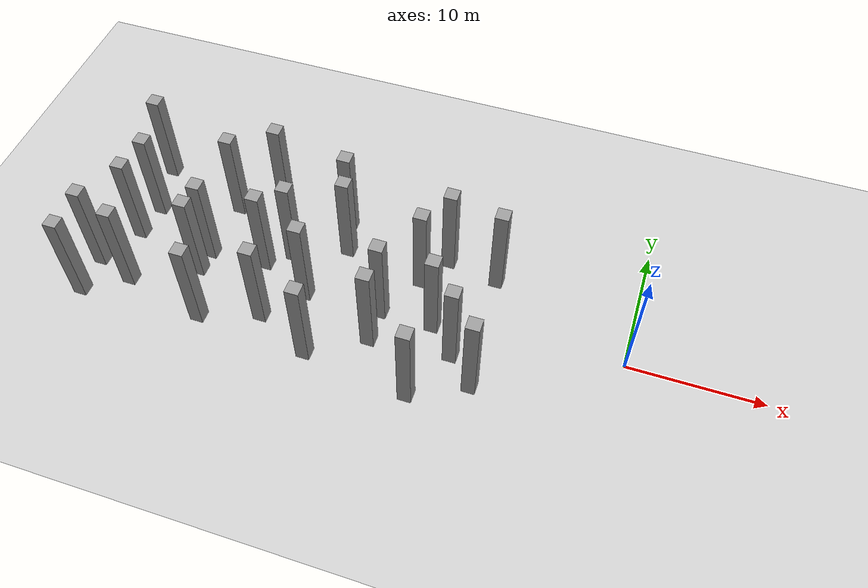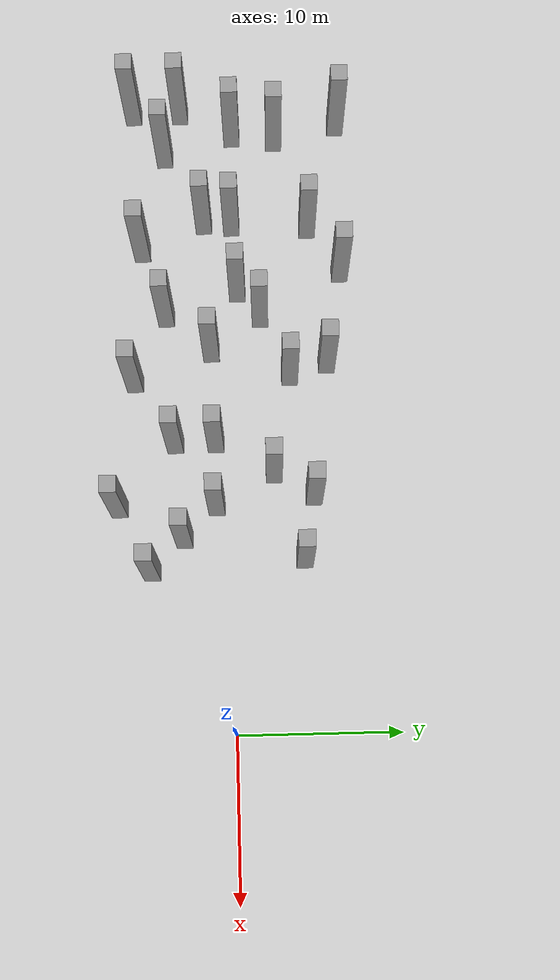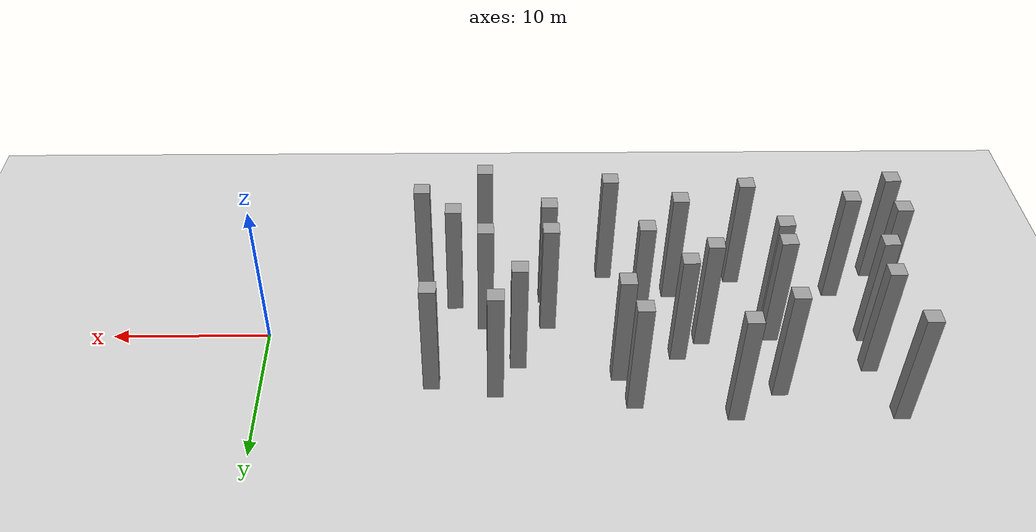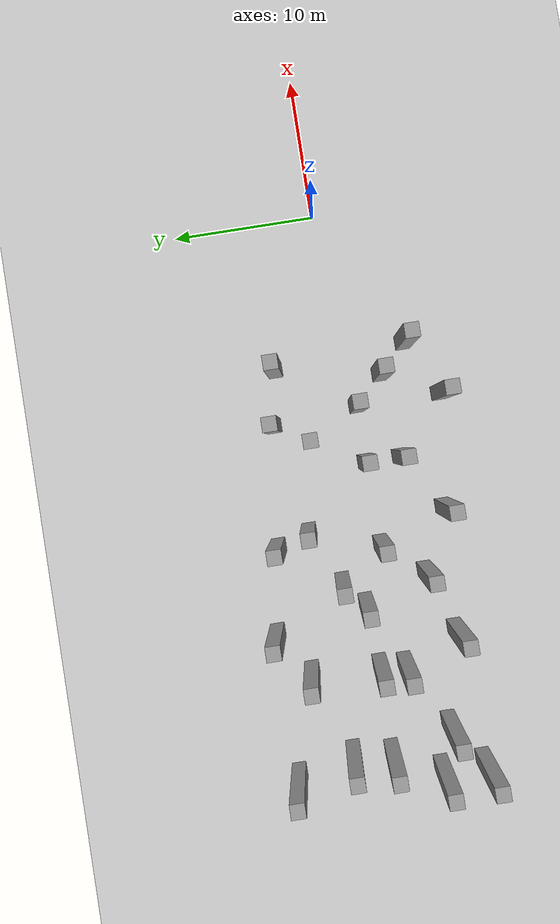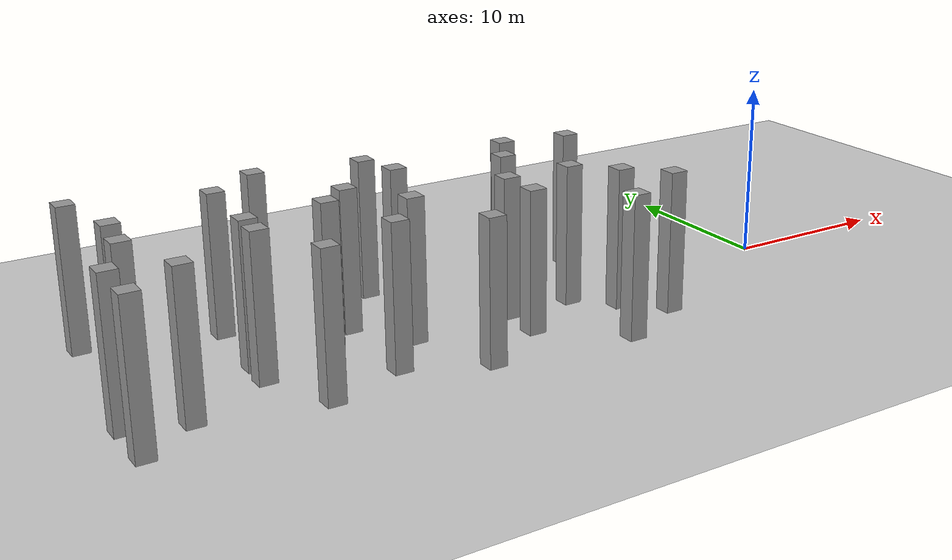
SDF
<sdf version="1.7">
 <world name="default">
  <model name="ground_plane">
   <static>1</static>
   <link name="link">
    <collision name="collision">
     <geometry><plane><normal>0 0 1</normal><size>100 100</size></plane></geometry>
     <surface>
      <contact><collide_bitmask>65535</collide_bitmask></contact>
      <friction><ode><mu>100</mu><mu2>50</mu2></ode></friction>
     </surface>
    </collision>
    <visual name="visual">
     <cast_shadows>0</cast_shadows>
     <geometry><plane><normal>0 0 1</normal><size>100 100</size></plane></geometry>
     <material>
      <script><uri>file://media/materials/scripts/gazebo.material</uri><name>Gazebo/Grey</name></script>
     </material>
    </visual>
   </link>
  </model>
  <model name="unit_box_static42">
   <link name="link">
    <inertial>
     <mass>1</mass>
     <inertia>
      <ixx>0.166667</ixx>
      <ixy>0</ixy>
      <ixz>0</ixz>
      <iyy>0.166667</iyy>
      <iyz>0</iyz>
      <izz>0.166667</izz>
     </inertia>
    </inertial>
    <visual name="visual">
     <geometry><box><size>1 1 8</size></box></geometry>
     <material>
      <script><name>Gazebo/Grey</name><uri>file://media/materials/scripts/gazebo.material</uri></script>
      <shader type="pixel"/>
     </material>
    </visual>
    <collision name="collision">
     <geometry><box><size>1 1 8</size></box></geometry>
     <surface>
      <friction>
       <ode><mu>1</mu><mu2>1</mu2><fdir1>0 0 0</fdir1><slip1>0</slip1><slip2>0</slip2></ode>
       <torsional>
        <coefficient>1</coefficient>
        <patch_radius>0</patch_radius>
        <surface_radius>0</surface_radius>
        <use_patch_radius>1</use_patch_radius>
        <ode><slip>0</slip></ode>
       </torsional>
      </friction>
      <bounce><restitution_coefficient>0</restitution_coefficient><threshold>1e+06</threshold></bounce>
      <contact>
       <collide_without_contact>0</collide_without_contact>
       <collide_without_contact_bitmask>1</collide_without_contact_bitmask>
       <collide_bitmask>1</collide_bitmask>
       <ode>
        <soft_cfm>0</soft_cfm>
        <soft_erp>0.2</soft_erp>
        <kp>1e+13</kp>
        <kd>1</kd>
        <max_vel>0.01</max_vel>
        <min_depth>0</min_depth>
       </ode>
       <bullet>
        <split_impulse>1</split_impulse>
        <split_impulse_penetration_threshold>-0.01</split_impulse_penetration_threshold>
        <soft_cfm>0</soft_cfm>
        <soft_erp>0.2</soft_erp>
        <kp>1e+13</kp>
        <kd>1</kd>
       </bullet>
      </contact>
     </surface>
    </collision>
   </link>
   <static>1</static>
   <pose>-26.1071 1.89959 4 0 -0 0</pose>
  </model>
  <model name="unit_box_static42_clone">
   <link name="link">
    <inertial>
     <mass>1</mass>
     <inertia>
      <ixx>0.166667</ixx>
      <ixy>0</ixy>
      <ixz>0</ixz>
      <iyy>0.166667</iyy>
      <iyz>0</iyz>
      <izz>0.166667</izz>
     </inertia>
    </inertial>
    <visual name="visual">
     <geometry><box><size>1 1 8</size></box></geometry>
     <material>
      <script><name>Gazebo/Grey</name><uri>file://media/materials/scripts/gazebo.material</uri></script>
      <shader type="pixel"/>
     </material>
    </visual>
    <collision name="collision">
     <geometry><box><size>1 1 8</size></box></geometry>
     <surface>
      <friction>
       <ode><mu>1</mu><mu2>1</mu2><fdir1>0 0 0</fdir1><slip1>0</slip1><slip2>0</slip2></ode>
       <torsional>
        <coefficient>1</coefficient>
        <patch_radius>0</patch_radius>
        <surface_radius>0</surface_radius>
        <use_patch_radius>1</use_patch_radius>
        <ode><slip>0</slip></ode>
       </torsional>
      </friction>
      <bounce><restitution_coefficient>0</restitution_coefficient><threshold>1e+06</threshold></bounce>
      <contact>
       <collide_without_contact>0</collide_without_contact>
       <collide_without_contact_bitmask>1</collide_without_contact_bitmask>
       <collide_bitmask>1</collide_bitmask>
       <ode>
        <soft_cfm>0</soft_cfm>
        <soft_erp>0.2</soft_erp>
        <kp>1e+13</kp>
        <kd>1</kd>
        <max_vel>0.01</max_vel>
        <min_depth>0</min_depth>
       </ode>
       <bullet>
        <split_impulse>1</split_impulse>
        <split_impulse_penetration_threshold>-0.01</split_impulse_penetration_threshold>
        <soft_cfm>0</soft_cfm>
        <soft_erp>0.2</soft_erp>
        <kp>1e+13</kp>
        <kd>1</kd>
       </bullet>
      </contact>
     </surface>
    </collision>
   </link>
   <static>1</static>
   <pose>-26.2501 -4.00057 4 0 -0 0</pose>
  </model>
  <model name="unit_box_static42_clone_0">
   <link name="link">
    <inertial>
     <mass>1</mass>
     <inertia>
      <ixx>0.166667</ixx>
      <ixy>0</ixy>
      <ixz>0</ixz>
      <iyy>0.166667</iyy>
      <iyz>0</iyz>
      <izz>0.166667</izz>
     </inertia>
    </inertial>
    <visual name="visual">
     <geometry><box><size>1 1 8</size></box></geometry>
     <material>
      <script><name>Gazebo/Grey</name><uri>file://media/materials/scripts/gazebo.material</uri></script>
      <shader type="pixel"/>
     </material>
    </visual>
    <collision name="collision">
     <geometry><box><size>1 1 8</size></box></geometry>
     <surface>
      <friction>
       <ode><mu>1</mu><mu2>1</mu2><fdir1>0 0 0</fdir1><slip1>0</slip1><slip2>0</slip2></ode>
       <torsional>
        <coefficient>1</coefficient>
        <patch_radius>0</patch_radius>
        <surface_radius>0</surface_radius>
        <use_patch_radius>1</use_patch_radius>
        <ode><slip>0</slip></ode>
       </torsional>
      </friction>
      <bounce><restitution_coefficient>0</restitution_coefficient><threshold>1e+06</threshold></bounce>
      <contact>
       <collide_without_contact>0</collide_without_contact>
       <collide_without_contact_bitmask>1</collide_without_contact_bitmask>
       <collide_bitmask>1</collide_bitmask>
       <ode>
        <soft_cfm>0</soft_cfm>
        <soft_erp>0.2</soft_erp>
        <kp>1e+13</kp>
        <kd>1</kd>
        <max_vel>0.01</max_vel>
        <min_depth>0</min_depth>
       </ode>
       <bullet>
        <split_impulse>1</split_impulse>
        <split_impulse_penetration_threshold>-0.01</split_impulse_penetration_threshold>
        <soft_cfm>0</soft_cfm>
        <soft_erp>0.2</soft_erp>
        <kp>1e+13</kp>
        <kd>1</kd>
       </bullet>
      </contact>
     </surface>
    </collision>
   </link>
   <static>1</static>
   <pose>-18 -3.51417 4 0 -0 0</pose>
  </model>
  <model name="unit_box_static42_clone_1">
   <link name="link">
    <inertial>
     <mass>1</mass>
     <inertia>
      <ixx>0.166667</ixx>
      <ixy>0</ixy>
      <ixz>0</ixz>
      <iyy>0.166667</iyy>
      <iyz>0</iyz>
      <izz>0.166667</izz>
     </inertia>
    </inertial>
    <visual name="visual">
     <geometry><box><size>1 1 8</size></box></geometry>
     <material>
      <script><name>Gazebo/Grey</name><uri>file://media/materials/scripts/gazebo.material</uri></script>
      <shader type="pixel"/>
     </material>
    </visual>
    <collision name="collision">
     <geometry><box><size>1 1 8</size></box></geometry>
     <surface>
      <friction>
       <ode><mu>1</mu><mu2>1</mu2><fdir1>0 0 0</fdir1><slip1>0</slip1><slip2>0</slip2></ode>
       <torsional>
        <coefficient>1</coefficient>
        <patch_radius>0</patch_radius>
        <surface_radius>0</surface_radius>
        <use_patch_radius>1</use_patch_radius>
        <ode><slip>0</slip></ode>
       </torsional>
      </friction>
      <bounce><restitution_coefficient>0</restitution_coefficient><threshold>1e+06</threshold></bounce>
      <contact>
       <collide_without_contact>0</collide_without_contact>
       <collide_without_contact_bitmask>1</collide_without_contact_bitmask>
       <collide_bitmask>1</collide_bitmask>
       <ode>
        <soft_cfm>0</soft_cfm>
        <soft_erp>0.2</soft_erp>
        <kp>1e+13</kp>
        <kd>1</kd>
        <max_vel>0.01</max_vel>
        <min_depth>0</min_depth>
       </ode>
       <bullet>
        <split_impulse>1</split_impulse>
        <split_impulse_penetration_threshold>-0.01</split_impulse_penetration_threshold>
        <soft_cfm>0</soft_cfm>
        <soft_erp>0.2</soft_erp>
        <kp>1e+13</kp>
        <kd>1</kd>
       </bullet>
      </contact>
     </surface>
    </collision>
   </link>
   <static>1</static>
   <pose>-18 -1 4 0 -0 0</pose>
  </model>
  <model name="unit_box_static42_clone_2">
   <link name="link">
    <inertial>
     <mass>1</mass>
     <inertia>
      <ixx>0.166667</ixx>
      <ixy>0</ixy>
      <ixz>0</ixz>
      <iyy>0.166667</iyy>
      <iyz>0</iyz>
      <izz>0.166667</izz>
     </inertia>
    </inertial>
    <visual name="visual">
     <geometry><box><size>1 1 8</size></box></geometry>
     <material>
      <script><name>Gazebo/Grey</name><uri>file://media/materials/scripts/gazebo.material</uri></script>
      <shader type="pixel"/>
     </material>
    </visual>
    <collision name="collision">
     <geometry><box><size>1 1 8</size></box></geometry>
     <surface>
      <friction>
       <ode><mu>1</mu><mu2>1</mu2><fdir1>0 0 0</fdir1><slip1>0</slip1><slip2>0</slip2></ode>
       <torsional>
        <coefficient>1</coefficient>
        <patch_radius>0</patch_radius>
        <surface_radius>0</surface_radius>
        <use_patch_radius>1</use_patch_radius>
        <ode><slip>0</slip></ode>
       </torsional>
      </friction>
      <bounce><restitution_coefficient>0</restitution_coefficient><threshold>1e+06</threshold></bounce>
      <contact>
       <collide_without_contact>0</collide_without_contact>
       <collide_without_contact_bitmask>1</collide_without_contact_bitmask>
       <collide_bitmask>1</collide_bitmask>
       <ode>
        <soft_cfm>0</soft_cfm>
        <soft_erp>0.2</soft_erp>
        <kp>1e+13</kp>
        <kd>1</kd>
        <max_vel>0.01</max_vel>
        <min_depth>0</min_depth>
       </ode>
       <bullet>
        <split_impulse>1</split_impulse>
        <split_impulse_penetration_threshold>-0.01</split_impulse_penetration_threshold>
        <soft_cfm>0</soft_cfm>
        <soft_erp>0.2</soft_erp>
        <kp>1e+13</kp>
        <kd>1</kd>
       </bullet>
      </contact>
     </surface>
    </collision>
   </link>
   <static>1</static>
   <pose>-14 -1 4 0 -0 0</pose>
  </model>
  <model name="unit_box_static42_clone_3">
   <link name="link">
    <inertial>
     <mass>1</mass>
     <inertia>
      <ixx>0.166667</ixx>
      <ixy>0</ixy>
      <ixz>0</ixz>
      <iyy>0.166667</iyy>
      <iyz>0</iyz>
      <izz>0.166667</izz>
     </inertia>
    </inertial>
    <visual name="visual">
     <geometry><box><size>1 1 8</size></box></geometry>
     <material>
      <script><name>Gazebo/Grey</name><uri>file://media/materials/scripts/gazebo.material</uri></script>
      <shader type="pixel"/>
     </material>
    </visual>
    <collision name="collision">
     <geometry><box><size>1 1 8</size></box></geometry>
     <surface>
      <friction>
       <ode><mu>1</mu><mu2>1</mu2><fdir1>0 0 0</fdir1><slip1>0</slip1><slip2>0</slip2></ode>
       <torsional>
        <coefficient>1</coefficient>
        <patch_radius>0</patch_radius>
        <surface_radius>0</surface_radius>
        <use_patch_radius>1</use_patch_radius>
        <ode><slip>0</slip></ode>
       </torsional>
      </friction>
      <bounce><restitution_coefficient>0</restitution_coefficient><threshold>1e+06</threshold></bounce>
      <contact>
       <collide_without_contact>0</collide_without_contact>
       <collide_without_contact_bitmask>1</collide_without_contact_bitmask>
       <collide_bitmask>1</collide_bitmask>
       <ode>
        <soft_cfm>0</soft_cfm>
        <soft_erp>0.2</soft_erp>
        <kp>1e+13</kp>
        <kd>1</kd>
        <max_vel>0.01</max_vel>
        <min_depth>0</min_depth>
       </ode>
       <bullet>
        <split_impulse>1</split_impulse>
        <split_impulse_penetration_threshold>-0.01</split_impulse_penetration_threshold>
        <soft_cfm>0</soft_cfm>
        <soft_erp>0.2</soft_erp>
        <kp>1e+13</kp>
        <kd>1</kd>
       </bullet>
      </contact>
     </surface>
    </collision>
   </link>
   <static>1</static>
   <pose>-12 -3 4 0 -0 0</pose>
  </model>
  <model name="unit_box_static42_clone_4">
   <link name="link">
    <inertial>
     <mass>1</mass>
     <inertia>
      <ixx>0.166667</ixx>
      <ixy>0</ixy>
      <ixz>0</ixz>
      <iyy>0.166667</iyy>
      <iyz>0</iyz>
      <izz>0.166667</izz>
     </inertia>
    </inertial>
    <visual name="visual">
     <geometry><box><size>1 1 8</size></box></geometry>
     <material>
      <script><name>Gazebo/Grey</name><uri>file://media/materials/scripts/gazebo.material</uri></script>
      <shader type="pixel"/>
     </material>
    </visual>
    <collision name="collision">
     <geometry><box><size>1 1 8</size></box></geometry>
     <surface>
      <friction>
       <ode><mu>1</mu><mu2>1</mu2><fdir1>0 0 0</fdir1><slip1>0</slip1><slip2>0</slip2></ode>
       <torsional>
        <coefficient>1</coefficient>
        <patch_radius>0</patch_radius>
        <surface_radius>0</surface_radius>
        <use_patch_radius>1</use_patch_radius>
        <ode><slip>0</slip></ode>
       </torsional>
      </friction>
      <bounce><restitution_coefficient>0</restitution_coefficient><threshold>1e+06</threshold></bounce>
      <contact>
       <collide_without_contact>0</collide_without_contact>
       <collide_without_contact_bitmask>1</collide_without_contact_bitmask>
       <collide_bitmask>1</collide_bitmask>
       <ode>
        <soft_cfm>0</soft_cfm>
        <soft_erp>0.2</soft_erp>
        <kp>1e+13</kp>
        <kd>1</kd>
        <max_vel>0.01</max_vel>
        <min_depth>0</min_depth>
       </ode>
       <bullet>
        <split_impulse>1</split_impulse>
        <split_impulse_penetration_threshold>-0.01</split_impulse_penetration_threshold>
        <soft_cfm>0</soft_cfm>
        <soft_erp>0.2</soft_erp>
        <kp>1e+13</kp>
        <kd>1</kd>
       </bullet>
      </contact>
     </surface>
    </collision>
   </link>
   <static>1</static>
   <pose>-10 -5 4 0 -0 0</pose>
  </model>
  <model name="unit_box_static42_clone_20">
   <link name="link">
    <inertial>
     <mass>1</mass>
     <inertia>
      <ixx>0.166667</ixx>
      <ixy>0</ixy>
      <ixz>0</ixz>
      <iyy>0.166667</iyy>
      <iyz>0</iyz>
      <izz>0.166667</izz>
     </inertia>
    </inertial>
    <visual name="visual">
     <geometry><box><size>1 1 8</size></box></geometry>
     <material>
      <script><name>Gazebo/Grey</name><uri>file://media/materials/scripts/gazebo.material</uri></script>
      <shader type="pixel"/>
     </material>
    </visual>
    <collision name="collision">
     <geometry><box><size>1 1 8</size></box></geometry>
     <surface>
      <friction>
       <ode><mu>1</mu><mu2>1</mu2><fdir1>0 0 0</fdir1><slip1>0</slip1><slip2>0</slip2></ode>
       <torsional>
        <coefficient>1</coefficient>
        <patch_radius>0</patch_radius>
        <surface_radius>0</surface_radius>
        <use_patch_radius>1</use_patch_radius>
        <ode><slip>0</slip></ode>
       </torsional>
      </friction>
      <bounce><restitution_coefficient>0</restitution_coefficient><threshold>1e+06</threshold></bounce>
      <contact>
       <collide_without_contact>0</collide_without_contact>
       <collide_without_contact_bitmask>1</collide_without_contact_bitmask>
       <collide_bitmask>1</collide_bitmask>
       <ode>
        <soft_cfm>0</soft_cfm>
        <soft_erp>0.2</soft_erp>
        <kp>1e+13</kp>
        <kd>1</kd>
        <max_vel>0.01</max_vel>
        <min_depth>0</min_depth>
       </ode>
       <bullet>
        <split_impulse>1</split_impulse>
        <split_impulse_penetration_threshold>-0.01</split_impulse_penetration_threshold>
        <soft_cfm>0</soft_cfm>
        <soft_erp>0.2</soft_erp>
        <kp>1e+13</kp>
        <kd>1</kd>
       </bullet>
      </contact>
     </surface>
    </collision>
   </link>
   <static>1</static>
   <pose>-14.5362 5 4 0 -0 0</pose>
  </model>
  <model name="unit_box_static42_clone_21">
   <link name="link">
    <inertial>
     <mass>1</mass>
     <inertia>
      <ixx>0.166667</ixx>
      <ixy>0</ixy>
      <ixz>0</ixz>
      <iyy>0.166667</iyy>
      <iyz>0</iyz>
      <izz>0.166667</izz>
     </inertia>
    </inertial>
    <visual name="visual">
     <geometry><box><size>1 1 8</size></box></geometry>
     <material>
      <script><name>Gazebo/Grey</name><uri>file://media/materials/scripts/gazebo.material</uri></script>
      <shader type="pixel"/>
     </material>
    </visual>
    <collision name="collision">
     <geometry><box><size>1 1 8</size></box></geometry>
     <surface>
      <friction>
       <ode><mu>1</mu><mu2>1</mu2><fdir1>0 0 0</fdir1><slip1>0</slip1><slip2>0</slip2></ode>
       <torsional>
        <coefficient>1</coefficient>
        <patch_radius>0</patch_radius>
        <surface_radius>0</surface_radius>
        <use_patch_radius>1</use_patch_radius>
        <ode><slip>0</slip></ode>
       </torsional>
      </friction>
      <bounce><restitution_coefficient>0</restitution_coefficient><threshold>1e+06</threshold></bounce>
      <contact>
       <collide_without_contact>0</collide_without_contact>
       <collide_without_contact_bitmask>1</collide_without_contact_bitmask>
       <collide_bitmask>1</collide_bitmask>
       <ode>
        <soft_cfm>0</soft_cfm>
        <soft_erp>0.2</soft_erp>
        <kp>1e+13</kp>
        <kd>1</kd>
        <max_vel>0.01</max_vel>
        <min_depth>0</min_depth>
       </ode>
       <bullet>
        <split_impulse>1</split_impulse>
        <split_impulse_penetration_threshold>-0.01</split_impulse_penetration_threshold>
        <soft_cfm>0</soft_cfm>
        <soft_erp>0.2</soft_erp>
        <kp>1e+13</kp>
        <kd>1</kd>
       </bullet>
      </contact>
     </surface>
    </collision>
   </link>
   <static>1</static>
   <pose>-16 2.56467 4 0 -0 0</pose>
  </model>
  <model name="unit_box_static42_clone_22">
   <link name="link">
    <inertial>
     <mass>1</mass>
     <inertia>
      <ixx>0.166667</ixx>
      <ixy>0</ixy>
      <ixz>0</ixz>
      <iyy>0.166667</iyy>
      <iyz>0</iyz>
      <izz>0.166667</izz>
     </inertia>
    </inertial>
    <visual name="visual">
     <geometry><box><size>1 1 8</size></box></geometry>
     <material>
      <script><name>Gazebo/Grey</name><uri>file://media/materials/scripts/gazebo.material</uri></script>
      <shader type="pixel"/>
     </material>
    </visual>
    <collision name="collision">
     <geometry><box><size>1 1 8</size></box></geometry>
     <surface>
      <friction>
       <ode><mu>1</mu><mu2>1</mu2><fdir1>0 0 0</fdir1><slip1>0</slip1><slip2>0</slip2></ode>
       <torsional>
        <coefficient>1</coefficient>
        <patch_radius>0</patch_radius>
        <surface_radius>0</surface_radius>
        <use_patch_radius>1</use_patch_radius>
        <ode><slip>0</slip></ode>
       </torsional>
      </friction>
      <bounce><restitution_coefficient>0</restitution_coefficient><threshold>1e+06</threshold></bounce>
      <contact>
       <collide_without_contact>0</collide_without_contact>
       <collide_without_contact_bitmask>1</collide_without_contact_bitmask>
       <collide_bitmask>1</collide_bitmask>
       <ode>
        <soft_cfm>0</soft_cfm>
        <soft_erp>0.2</soft_erp>
        <kp>1e+13</kp>
        <kd>1</kd>
        <max_vel>0.01</max_vel>
        <min_depth>0</min_depth>
       </ode>
       <bullet>
        <split_impulse>1</split_impulse>
        <split_impulse_penetration_threshold>-0.01</split_impulse_penetration_threshold>
        <soft_cfm>0</soft_cfm>
        <soft_erp>0.2</soft_erp>
        <kp>1e+13</kp>
        <kd>1</kd>
       </bullet>
      </contact>
     </surface>
    </collision>
   </link>
   <static>1</static>
   <pose>-23 6 4 0 -0 0</pose>
  </model>
  <model name="unit_box_static42_clone_23">
   <link name="link">
    <inertial>
     <mass>1</mass>
     <inertia>
      <ixx>0.166667</ixx>
      <ixy>0</ixy>
      <ixz>0</ixz>
      <iyy>0.166667</iyy>
      <iyz>0</iyz>
      <izz>0.166667</izz>
     </inertia>
    </inertial>
    <visual name="visual">
     <geometry><box><size>1 1 8</size></box></geometry>
     <material>
      <script><name>Gazebo/Grey</name><uri>file://media/materials/scripts/gazebo.material</uri></script>
      <shader type="pixel"/>
     </material>
    </visual>
    <collision name="collision">
     <geometry><box><size>1 1 8</size></box></geometry>
     <surface>
      <friction>
       <ode><mu>1</mu><mu2>1</mu2><fdir1>0 0 0</fdir1><slip1>0</slip1><slip2>0</slip2></ode>
       <torsional>
        <coefficient>1</coefficient>
        <patch_radius>0</patch_radius>
        <surface_radius>0</surface_radius>
        <use_patch_radius>1</use_patch_radius>
        <ode><slip>0</slip></ode>
       </torsional>
      </friction>
      <bounce><restitution_coefficient>0</restitution_coefficient><threshold>1e+06</threshold></bounce>
      <contact>
       <collide_without_contact>0</collide_without_contact>
       <collide_without_contact_bitmask>1</collide_without_contact_bitmask>
       <collide_bitmask>1</collide_bitmask>
       <ode>
        <soft_cfm>0</soft_cfm>
        <soft_erp>0.2</soft_erp>
        <kp>1e+13</kp>
        <kd>1</kd>
        <max_vel>0.01</max_vel>
        <min_depth>0</min_depth>
       </ode>
       <bullet>
        <split_impulse>1</split_impulse>
        <split_impulse_penetration_threshold>-0.01</split_impulse_penetration_threshold>
        <soft_cfm>0</soft_cfm>
        <soft_erp>0.2</soft_erp>
        <kp>1e+13</kp>
        <kd>1</kd>
       </bullet>
      </contact>
     </surface>
    </collision>
   </link>
   <static>1</static>
   <pose>-32 5 4 0 -0 0</pose>
  </model>
  <model name="unit_box_static42_clone_24">
   <link name="link">
    <inertial>
     <mass>1</mass>
     <inertia>
      <ixx>0.166667</ixx>
      <ixy>0</ixy>
      <ixz>0</ixz>
      <iyy>0.166667</iyy>
      <iyz>0</iyz>
      <izz>0.166667</izz>
     </inertia>
    </inertial>
    <visual name="visual">
     <geometry><box><size>1 1 8</size></box></geometry>
     <material>
      <script><name>Gazebo/Grey</name><uri>file://media/materials/scripts/gazebo.material</uri></script>
      <shader type="pixel"/>
     </material>
    </visual>
    <collision name="collision">
     <geometry><box><size>1 1 8</size></box></geometry>
     <surface>
      <friction>
       <ode><mu>1</mu><mu2>1</mu2><fdir1>0 0 0</fdir1><slip1>0</slip1><slip2>0</slip2></ode>
       <torsional>
        <coefficient>1</coefficient>
        <patch_radius>0</patch_radius>
        <surface_radius>0</surface_radius>
        <use_patch_radius>1</use_patch_radius>
        <ode><slip>0</slip></ode>
       </torsional>
      </friction>
      <bounce><restitution_coefficient>0</restitution_coefficient><threshold>1e+06</threshold></bounce>
      <contact>
       <collide_without_contact>0</collide_without_contact>
       <collide_without_contact_bitmask>1</collide_without_contact_bitmask>
       <collide_bitmask>1</collide_bitmask>
       <ode>
        <soft_cfm>0</soft_cfm>
        <soft_erp>0.2</soft_erp>
        <kp>1e+13</kp>
        <kd>1</kd>
        <max_vel>0.01</max_vel>
        <min_depth>0</min_depth>
       </ode>
       <bullet>
        <split_impulse>1</split_impulse>
        <split_impulse_penetration_threshold>-0.01</split_impulse_penetration_threshold>
        <soft_cfm>0</soft_cfm>
        <soft_erp>0.2</soft_erp>
        <kp>1e+13</kp>
        <kd>1</kd>
       </bullet>
      </contact>
     </surface>
    </collision>
   </link>
   <static>1</static>
   <pose>-27.8092 0.496552 4 0 -0 0</pose>
  </model>
  <model name="unit_box_static42_clone_25">
   <link name="link">
    <inertial>
     <mass>1</mass>
     <inertia>
      <ixx>0.166667</ixx>
      <ixy>0</ixy>
      <ixz>0</ixz>
      <iyy>0.166667</iyy>
      <iyz>0</iyz>
      <izz>0.166667</izz>
     </inertia>
    </inertial>
    <visual name="visual">
     <geometry><box><size>1 1 8</size></box></geometry>
     <material>
      <script><name>Gazebo/Grey</name><uri>file://media/materials/scripts/gazebo.material</uri></script>
      <shader type="pixel"/>
     </material>
    </visual>
    <collision name="collision">
     <geometry><box><size>1 1 8</size></box></geometry>
     <surface>
      <friction>
       <ode><mu>1</mu><mu2>1</mu2><fdir1>0 0 0</fdir1><slip1>0</slip1><slip2>0</slip2></ode>
       <torsional>
        <coefficient>1</coefficient>
        <patch_radius>0</patch_radius>
        <surface_radius>0</surface_radius>
        <use_patch_radius>1</use_patch_radius>
        <ode><slip>0</slip></ode>
       </torsional>
      </friction>
      <bounce><restitution_coefficient>0</restitution_coefficient><threshold>1e+06</threshold></bounce>
      <contact>
       <collide_without_contact>0</collide_without_contact>
       <collide_without_contact_bitmask>1</collide_without_contact_bitmask>
       <collide_bitmask>1</collide_bitmask>
       <ode>
        <soft_cfm>0</soft_cfm>
        <soft_erp>0.2</soft_erp>
        <kp>1e+13</kp>
        <kd>1</kd>
        <max_vel>0.01</max_vel>
        <min_depth>0</min_depth>
       </ode>
       <bullet>
        <split_impulse>1</split_impulse>
        <split_impulse_penetration_threshold>-0.01</split_impulse_penetration_threshold>
        <soft_cfm>0</soft_cfm>
        <soft_erp>0.2</soft_erp>
        <kp>1e+13</kp>
        <kd>1</kd>
       </bullet>
      </contact>
     </surface>
    </collision>
   </link>
   <static>1</static>
   <pose>-30.6146 -5.47749 4 0 -0 0</pose>
  </model>
  <model name="unit_box_static42_clone_26">
   <link name="link">
    <inertial>
     <mass>1</mass>
     <inertia>
      <ixx>0.166667</ixx>
      <ixy>0</ixy>
      <ixz>0</ixz>
      <iyy>0.166667</iyy>
      <iyz>0</iyz>
      <izz>0.166667</izz>
     </inertia>
    </inertial>
    <visual name="visual">
     <geometry><box><size>1 1 8</size></box></geometry>
     <material>
      <script><name>Gazebo/Grey</name><uri>file://media/materials/scripts/gazebo.material</uri></script>
      <shader type="pixel"/>
     </material>
    </visual>
    <collision name="collision">
     <geometry><box><size>1 1 8</size></box></geometry>
     <surface>
      <friction>
       <ode><mu>1</mu><mu2>1</mu2><fdir1>0 0 0</fdir1><slip1>0</slip1><slip2>0</slip2></ode>
       <torsional>
        <coefficient>1</coefficient>
        <patch_radius>0</patch_radius>
        <surface_radius>0</surface_radius>
        <use_patch_radius>1</use_patch_radius>
        <ode><slip>0</slip></ode>
       </torsional>
      </friction>
      <bounce><restitution_coefficient>0</restitution_coefficient><threshold>1e+06</threshold></bounce>
      <contact>
       <collide_without_contact>0</collide_without_contact>
       <collide_without_contact_bitmask>1</collide_without_contact_bitmask>
       <collide_bitmask>1</collide_bitmask>
       <ode>
        <soft_cfm>0</soft_cfm>
        <soft_erp>0.2</soft_erp>
        <kp>1e+13</kp>
        <kd>1</kd>
        <max_vel>0.01</max_vel>
        <min_depth>0</min_depth>
       </ode>
       <bullet>
        <split_impulse>1</split_impulse>
        <split_impulse_penetration_threshold>-0.01</split_impulse_penetration_threshold>
        <soft_cfm>0</soft_cfm>
        <soft_erp>0.2</soft_erp>
        <kp>1e+13</kp>
        <kd>1</kd>
       </bullet>
      </contact>
     </surface>
    </collision>
   </link>
   <static>1</static>
   <pose>-32.2478 0.197612 4 0 -0 0</pose>
  </model>
  <model name="unit_box_static42_clone_27">
   <link name="link">
    <inertial>
     <mass>1</mass>
     <inertia>
      <ixx>0.166667</ixx>
      <ixy>0</ixy>
      <ixz>0</ixz>
      <iyy>0.166667</iyy>
      <iyz>0</iyz>
      <izz>0.166667</izz>
     </inertia>
    </inertial>
    <visual name="visual">
     <geometry><box><size>1 1 8</size></box></geometry>
     <material>
      <script><name>Gazebo/Grey</name><uri>file://media/materials/scripts/gazebo.material</uri></script>
      <shader type="pixel"/>
     </material>
    </visual>
    <collision name="collision">
     <geometry><box><size>1 1 8</size></box></geometry>
     <surface>
      <friction>
       <ode><mu>1</mu><mu2>1</mu2><fdir1>0 0 0</fdir1><slip1>0</slip1><slip2>0</slip2></ode>
       <torsional>
        <coefficient>1</coefficient>
        <patch_radius>0</patch_radius>
        <surface_radius>0</surface_radius>
        <use_patch_radius>1</use_patch_radius>
        <ode><slip>0</slip></ode>
       </torsional>
      </friction>
      <bounce><restitution_coefficient>0</restitution_coefficient><threshold>1e+06</threshold></bounce>
      <contact>
       <collide_without_contact>0</collide_without_contact>
       <collide_without_contact_bitmask>1</collide_without_contact_bitmask>
       <collide_bitmask>1</collide_bitmask>
       <ode>
        <soft_cfm>0</soft_cfm>
        <soft_erp>0.2</soft_erp>
        <kp>1e+13</kp>
        <kd>1</kd>
        <max_vel>0.01</max_vel>
        <min_depth>0</min_depth>
       </ode>
       <bullet>
        <split_impulse>1</split_impulse>
        <split_impulse_penetration_threshold>-0.01</split_impulse_penetration_threshold>
        <soft_cfm>0</soft_cfm>
        <soft_erp>0.2</soft_erp>
        <kp>1e+13</kp>
        <kd>1</kd>
       </bullet>
      </contact>
     </surface>
    </collision>
   </link>
   <static>1</static>
   <pose>-32.4103 -1.56021 4 0 -0 0</pose>
  </model>
  <model name="unit_box_static42_clone_28">
   <link name="link">
    <inertial>
     <mass>1</mass>
     <inertia>
      <ixx>0.166667</ixx>
      <ixy>0</ixy>
      <ixz>0</ixz>
      <iyy>0.166667</iyy>
      <iyz>0</iyz>
      <izz>0.166667</izz>
     </inertia>
    </inertial>
    <visual name="visual">
     <geometry><box><size>1 1 8</size></box></geometry>
     <material>
      <script><name>Gazebo/Grey</name><uri>file://media/materials/scripts/gazebo.material</uri></script>
      <shader type="pixel"/>
     </material>
    </visual>
    <collision name="collision">
     <geometry><box><size>1 1 8</size></box></geometry>
     <surface>
      <friction>
       <ode><mu>1</mu><mu2>1</mu2><fdir1>0 0 0</fdir1><slip1>0</slip1><slip2>0</slip2></ode>
       <torsional>
        <coefficient>1</coefficient>
        <patch_radius>0</patch_radius>
        <surface_radius>0</surface_radius>
        <use_patch_radius>1</use_patch_radius>
        <ode><slip>0</slip></ode>
       </torsional>
      </friction>
      <bounce><restitution_coefficient>0</restitution_coefficient><threshold>1e+06</threshold></bounce>
      <contact>
       <collide_without_contact>0</collide_without_contact>
       <collide_without_contact_bitmask>1</collide_without_contact_bitmask>
       <collide_bitmask>1</collide_bitmask>
       <ode>
        <soft_cfm>0</soft_cfm>
        <soft_erp>0.2</soft_erp>
        <kp>1e+13</kp>
        <kd>1</kd>
        <max_vel>0.01</max_vel>
        <min_depth>0</min_depth>
       </ode>
       <bullet>
        <split_impulse>1</split_impulse>
        <split_impulse_penetration_threshold>-0.01</split_impulse_penetration_threshold>
        <soft_cfm>0</soft_cfm>
        <soft_erp>0.2</soft_erp>
        <kp>1e+13</kp>
        <kd>1</kd>
       </bullet>
      </contact>
     </surface>
    </collision>
   </link>
   <static>1</static>
   <pose>-38 3 4 0 -0 0</pose>
  </model>
  <model name="unit_box_static42_clone_29">
   <link name="link">
    <inertial>
     <mass>1</mass>
     <inertia>
      <ixx>0.166667</ixx>
      <ixy>0</ixy>
      <ixz>0</ixz>
      <iyy>0.166667</iyy>
      <iyz>0</iyz>
      <izz>0.166667</izz>
     </inertia>
    </inertial>
    <visual name="visual">
     <geometry><box><size>1 1 8</size></box></geometry>
     <material>
      <script><name>Gazebo/Grey</name><uri>file://media/materials/scripts/gazebo.material</uri></script>
      <shader type="pixel"/>
     </material>
    </visual>
    <collision name="collision">
     <geometry><box><size>1 1 8</size></box></geometry>
     <surface>
      <friction>
       <ode><mu>1</mu><mu2>1</mu2><fdir1>0 0 0</fdir1><slip1>0</slip1><slip2>0</slip2></ode>
       <torsional>
        <coefficient>1</coefficient>
        <patch_radius>0</patch_radius>
        <surface_radius>0</surface_radius>
        <use_patch_radius>1</use_patch_radius>
        <ode><slip>0</slip></ode>
       </torsional>
      </friction>
      <bounce><restitution_coefficient>0</restitution_coefficient><threshold>1e+06</threshold></bounce>
      <contact>
       <collide_without_contact>0</collide_without_contact>
       <collide_without_contact_bitmask>1</collide_without_contact_bitmask>
       <collide_bitmask>1</collide_bitmask>
       <ode>
        <soft_cfm>0</soft_cfm>
        <soft_erp>0.2</soft_erp>
        <kp>1e+13</kp>
        <kd>1</kd>
        <max_vel>0.01</max_vel>
        <min_depth>0</min_depth>
       </ode>
       <bullet>
        <split_impulse>1</split_impulse>
        <split_impulse_penetration_threshold>-0.01</split_impulse_penetration_threshold>
        <soft_cfm>0</soft_cfm>
        <soft_erp>0.2</soft_erp>
        <kp>1e+13</kp>
        <kd>1</kd>
       </bullet>
      </contact>
     </surface>
    </collision>
   </link>
   <static>1</static>
   <pose>-40 -3 4 0 -0 0</pose>
  </model>
  <model name="unit_box_static42_clone_30">
   <link name="link">
    <inertial>
     <mass>1</mass>
     <inertia>
      <ixx>0.166667</ixx>
      <ixy>0</ixy>
      <ixz>0</ixz>
      <iyy>0.166667</iyy>
      <iyz>0</iyz>
      <izz>0.166667</izz>
     </inertia>
    </inertial>
    <visual name="visual">
     <geometry><box><size>1 1 8</size></box></geometry>
     <material>
      <script><name>Gazebo/Grey</name><uri>file://media/materials/scripts/gazebo.material</uri></script>
      <shader type="pixel"/>
     </material>
    </visual>
    <collision name="collision">
     <geometry><box><size>1 1 8</size></box></geometry>
     <surface>
      <friction>
       <ode><mu>1</mu><mu2>1</mu2><fdir1>0 0 0</fdir1><slip1>0</slip1><slip2>0</slip2></ode>
       <torsional>
        <coefficient>1</coefficient>
        <patch_radius>0</patch_radius>
        <surface_radius>0</surface_radius>
        <use_patch_radius>1</use_patch_radius>
        <ode><slip>0</slip></ode>
       </torsional>
      </friction>
      <bounce><restitution_coefficient>0</restitution_coefficient><threshold>1e+06</threshold></bounce>
      <contact>
       <collide_without_contact>0</collide_without_contact>
       <collide_without_contact_bitmask>1</collide_without_contact_bitmask>
       <collide_bitmask>1</collide_bitmask>
       <ode>
        <soft_cfm>0</soft_cfm>
        <soft_erp>0.2</soft_erp>
        <kp>1e+13</kp>
        <kd>1</kd>
        <max_vel>0.01</max_vel>
        <min_depth>0</min_depth>
       </ode>
       <bullet>
        <split_impulse>1</split_impulse>
        <split_impulse_penetration_threshold>-0.01</split_impulse_penetration_threshold>
        <soft_cfm>0</soft_cfm>
        <soft_erp>0.2</soft_erp>
        <kp>1e+13</kp>
        <kd>1</kd>
       </bullet>
      </contact>
     </surface>
    </collision>
   </link>
   <static>1</static>
   <pose>-37 -4 4 0 -0 0</pose>
  </model>
  <model name="unit_box_static42_clone_37_clone_6">
   <link name="link">
    <inertial>
     <mass>1</mass>
     <inertia>
      <ixx>0.166667</ixx>
      <ixy>0</ixy>
      <ixz>0</ixz>
      <iyy>0.166667</iyy>
      <iyz>0</iyz>
      <izz>0.166667</izz>
     </inertia>
    </inertial>
    <visual name="visual">
     <geometry><box><size>1 1 8</size></box></geometry>
     <material>
      <script><name>Gazebo/Grey</name><uri>file://media/materials/scripts/gazebo.material</uri></script>
      <shader type="pixel"/>
     </material>
    </visual>
    <collision name="collision">
     <geometry><box><size>1 1 8</size></box></geometry>
     <surface>
      <friction>
       <ode><mu>1</mu><mu2>1</mu2><fdir1>0 0 0</fdir1><slip1>0</slip1><slip2>0</slip2></ode>
       <torsional>
        <coefficient>1</coefficient>
        <patch_radius>0</patch_radius>
        <surface_radius>0</surface_radius>
        <use_patch_radius>1</use_patch_radius>
        <ode><slip>0</slip></ode>
       </torsional>
      </friction>
      <bounce><restitution_coefficient>0</restitution_coefficient><threshold>1e+06</threshold></bounce>
      <contact>
       <collide_without_contact>0</collide_without_contact>
       <collide_without_contact_bitmask>1</collide_without_contact_bitmask>
       <collide_bitmask>1</collide_bitmask>
       <ode>
        <soft_cfm>0</soft_cfm>
        <soft_erp>0.2</soft_erp>
        <kp>1e+13</kp>
        <kd>1</kd>
        <max_vel>0.01</max_vel>
        <min_depth>0</min_depth>
       </ode>
       <bullet>
        <split_impulse>1</split_impulse>
        <split_impulse_penetration_threshold>-0.01</split_impulse_penetration_threshold>
        <soft_cfm>0</soft_cfm>
        <soft_erp>0.2</soft_erp>
        <kp>1e+13</kp>
        <kd>1</kd>
       </bullet>
      </contact>
     </surface>
    </collision>
   </link>
   <static>1</static>
   <pose>-14 -7 4 0 -0 0</pose>
  </model>
  <model name="unit_box_static42_clone_37_clone_7">
   <link name="link">
    <inertial>
     <mass>1</mass>
     <inertia>
      <ixx>0.166667</ixx>
      <ixy>0</ixy>
      <ixz>0</ixz>
      <iyy>0.166667</iyy>
      <iyz>0</iyz>
      <izz>0.166667</izz>
     </inertia>
    </inertial>
    <visual name="visual">
     <geometry><box><size>1 1 8</size></box></geometry>
     <material>
      <script><name>Gazebo/Grey</name><uri>file://media/materials/scripts/gazebo.material</uri></script>
      <shader type="pixel"/>
     </material>
    </visual>
    <collision name="collision">
     <geometry><box><size>1 1 8</size></box></geometry>
     <surface>
      <friction>
       <ode><mu>1</mu><mu2>1</mu2><fdir1>0 0 0</fdir1><slip1>0</slip1><slip2>0</slip2></ode>
       <torsional>
        <coefficient>1</coefficient>
        <patch_radius>0</patch_radius>
        <surface_radius>0</surface_radius>
        <use_patch_radius>1</use_patch_radius>
        <ode><slip>0</slip></ode>
       </torsional>
      </friction>
      <bounce><restitution_coefficient>0</restitution_coefficient><threshold>1e+06</threshold></bounce>
      <contact>
       <collide_without_contact>0</collide_without_contact>
       <collide_without_contact_bitmask>1</collide_without_contact_bitmask>
       <collide_bitmask>1</collide_bitmask>
       <ode>
        <soft_cfm>0</soft_cfm>
        <soft_erp>0.2</soft_erp>
        <kp>1e+13</kp>
        <kd>1</kd>
        <max_vel>0.01</max_vel>
        <min_depth>0</min_depth>
       </ode>
       <bullet>
        <split_impulse>1</split_impulse>
        <split_impulse_penetration_threshold>-0.01</split_impulse_penetration_threshold>
        <soft_cfm>0</soft_cfm>
        <soft_erp>0.2</soft_erp>
        <kp>1e+13</kp>
        <kd>1</kd>
       </bullet>
      </contact>
     </surface>
    </collision>
   </link>
   <static>1</static>
   <pose>-22 -6 4 0 -0 0</pose>
  </model>
  <model name="unit_box_static42_clone_37_clone_8">
   <link name="link">
    <inertial>
     <mass>1</mass>
     <inertia>
      <ixx>0.166667</ixx>
      <ixy>0</ixy>
      <ixz>0</ixz>
      <iyy>0.166667</iyy>
      <iyz>0</iyz>
      <izz>0.166667</izz>
     </inertia>
    </inertial>
    <visual name="visual">
     <geometry><box><size>1 1 8</size></box></geometry>
     <material>
      <script><name>Gazebo/Grey</name><uri>file://media/materials/scripts/gazebo.material</uri></script>
      <shader type="pixel"/>
     </material>
    </visual>
    <collision name="collision">
     <geometry><box><size>1 1 8</size></box></geometry>
     <surface>
      <friction>
       <ode><mu>1</mu><mu2>1</mu2><fdir1>0 0 0</fdir1><slip1>0</slip1><slip2>0</slip2></ode>
       <torsional>
        <coefficient>1</coefficient>
        <patch_radius>0</patch_radius>
        <surface_radius>0</surface_radius>
        <use_patch_radius>1</use_patch_radius>
        <ode><slip>0</slip></ode>
       </torsional>
      </friction>
      <bounce><restitution_coefficient>0</restitution_coefficient><threshold>1e+06</threshold></bounce>
      <contact>
       <collide_without_contact>0</collide_without_contact>
       <collide_without_contact_bitmask>1</collide_without_contact_bitmask>
       <collide_bitmask>1</collide_bitmask>
       <ode>
        <soft_cfm>0</soft_cfm>
        <soft_erp>0.2</soft_erp>
        <kp>1e+13</kp>
        <kd>1</kd>
        <max_vel>0.01</max_vel>
        <min_depth>0</min_depth>
       </ode>
       <bullet>
        <split_impulse>1</split_impulse>
        <split_impulse_penetration_threshold>-0.01</split_impulse_penetration_threshold>
        <soft_cfm>0</soft_cfm>
        <soft_erp>0.2</soft_erp>
        <kp>1e+13</kp>
        <kd>1</kd>
       </bullet>
      </contact>
     </surface>
    </collision>
   </link>
   <static>1</static>
   <pose>-29 7 4 0 -0 0</pose>
  </model>
  <model name="unit_box_static42_clone_37_clone_17">
   <link name="link">
    <inertial>
     <mass>1</mass>
     <inertia>
      <ixx>0.166667</ixx>
      <ixy>0</ixy>
      <ixz>0</ixz>
      <iyy>0.166667</iyy>
      <iyz>0</iyz>
      <izz>0.166667</izz>
     </inertia>
    </inertial>
    <visual name="visual">
     <geometry><box><size>1 1 8</size></box></geometry>
     <material>
      <script><name>Gazebo/Grey</name><uri>file://media/materials/scripts/gazebo.material</uri></script>
      <shader type="pixel"/>
     </material>
    </visual>
    <collision name="collision">
     <geometry><box><size>1 1 8</size></box></geometry>
     <surface>
      <friction>
       <ode><mu>1</mu><mu2>1</mu2><fdir1>0 0 0</fdir1><slip1>0</slip1><slip2>0</slip2></ode>
       <torsional>
        <coefficient>1</coefficient>
        <patch_radius>0</patch_radius>
        <surface_radius>0</surface_radius>
        <use_patch_radius>1</use_patch_radius>
        <ode><slip>0</slip></ode>
       </torsional>
      </friction>
      <bounce><restitution_coefficient>0</restitution_coefficient><threshold>1e+06</threshold></bounce>
      <contact>
       <collide_without_contact>0</collide_without_contact>
       <collide_without_contact_bitmask>1</collide_without_contact_bitmask>
       <collide_bitmask>1</collide_bitmask>
       <ode>
        <soft_cfm>0</soft_cfm>
        <soft_erp>0.2</soft_erp>
        <kp>1e+13</kp>
        <kd>1</kd>
        <max_vel>0.01</max_vel>
        <min_depth>0</min_depth>
       </ode>
       <bullet>
        <split_impulse>1</split_impulse>
        <split_impulse_penetration_threshold>-0.01</split_impulse_penetration_threshold>
        <soft_cfm>0</soft_cfm>
        <soft_erp>0.2</soft_erp>
        <kp>1e+13</kp>
        <kd>1</kd>
       </bullet>
      </contact>
     </surface>
    </collision>
   </link>
   <static>1</static>
   <pose>-39 7 4 0 -0 0</pose>
  </model>
  <model name="unit_box_static42_clone_37_clone_18">
   <link name="link">
    <inertial>
     <mass>1</mass>
     <inertia>
      <ixx>0.166667</ixx>
      <ixy>0</ixy>
      <ixz>0</ixz>
      <iyy>0.166667</iyy>
      <iyz>0</iyz>
      <izz>0.166667</izz>
     </inertia>
    </inertial>
    <visual name="visual">
     <geometry><box><size>1 1 8</size></box></geometry>
     <material>
      <script><name>Gazebo/Grey</name><uri>file://media/materials/scripts/gazebo.material</uri></script>
      <shader type="pixel"/>
     </material>
    </visual>
    <collision name="collision">
     <geometry><box><size>1 1 8</size></box></geometry>
     <surface>
      <friction>
       <ode><mu>1</mu><mu2>1</mu2><fdir1>0 0 0</fdir1><slip1>0</slip1><slip2>0</slip2></ode>
       <torsional>
        <coefficient>1</coefficient>
        <patch_radius>0</patch_radius>
        <surface_radius>0</surface_radius>
        <use_patch_radius>1</use_patch_radius>
        <ode><slip>0</slip></ode>
       </torsional>
      </friction>
      <bounce><restitution_coefficient>0</restitution_coefficient><threshold>1e+06</threshold></bounce>
      <contact>
       <collide_without_contact>0</collide_without_contact>
       <collide_without_contact_bitmask>1</collide_without_contact_bitmask>
       <collide_bitmask>1</collide_bitmask>
       <ode>
        <soft_cfm>0</soft_cfm>
        <soft_erp>0.2</soft_erp>
        <kp>1e+13</kp>
        <kd>1</kd>
        <max_vel>0.01</max_vel>
        <min_depth>0</min_depth>
       </ode>
       <bullet>
        <split_impulse>1</split_impulse>
        <split_impulse_penetration_threshold>-0.01</split_impulse_penetration_threshold>
        <soft_cfm>0</soft_cfm>
        <soft_erp>0.2</soft_erp>
        <kp>1e+13</kp>
        <kd>1</kd>
       </bullet>
      </contact>
     </surface>
    </collision>
   </link>
   <static>1</static>
   <pose>-40 -6 4 0 -0 0</pose>
  </model>
  <model name="unit_box_static42_clone_37_clone_19">
   <link name="link">
    <inertial>
     <mass>1</mass>
     <inertia>
      <ixx>0.166667</ixx>
      <ixy>0</ixy>
      <ixz>0</ixz>
      <iyy>0.166667</iyy>
      <iyz>0</iyz>
      <izz>0.166667</izz>
     </inertia>
    </inertial>
    <visual name="visual">
     <geometry><box><size>1 1 8</size></box></geometry>
     <material>
      <script><name>Gazebo/Grey</name><uri>file://media/materials/scripts/gazebo.material</uri></script>
      <shader type="pixel"/>
     </material>
    </visual>
    <collision name="collision">
     <geometry><box><size>1 1 8</size></box></geometry>
     <surface>
      <friction>
       <ode><mu>1</mu><mu2>1</mu2><fdir1>0 0 0</fdir1><slip1>0</slip1><slip2>0</slip2></ode>
       <torsional>
        <coefficient>1</coefficient>
        <patch_radius>0</patch_radius>
        <surface_radius>0</surface_radius>
        <use_patch_radius>1</use_patch_radius>
        <ode><slip>0</slip></ode>
       </torsional>
      </friction>
      <bounce><restitution_coefficient>0</restitution_coefficient><threshold>1e+06</threshold></bounce>
      <contact>
       <collide_without_contact>0</collide_without_contact>
       <collide_without_contact_bitmask>1</collide_without_contact_bitmask>
       <collide_bitmask>1</collide_bitmask>
       <ode>
        <soft_cfm>0</soft_cfm>
        <soft_erp>0.2</soft_erp>
        <kp>1e+13</kp>
        <kd>1</kd>
        <max_vel>0.01</max_vel>
        <min_depth>0</min_depth>
       </ode>
       <bullet>
        <split_impulse>1</split_impulse>
        <split_impulse_penetration_threshold>-0.01</split_impulse_penetration_threshold>
        <soft_cfm>0</soft_cfm>
        <soft_erp>0.2</soft_erp>
        <kp>1e+13</kp>
        <kd>1</kd>
       </bullet>
      </contact>
     </surface>
    </collision>
   </link>
   <static>1</static>
   <pose>-38.3567 0.310612 4 0 -0 0</pose>
  </model>
  <model name="unit_box_static42_clone_37_clone_20">
   <link name="link">
    <inertial>
     <mass>1</mass>
     <inertia>
      <ixx>0.166667</ixx>
      <ixy>0</ixy>
      <ixz>0</ixz>
      <iyy>0.166667</iyy>
      <iyz>0</iyz>
      <izz>0.166667</izz>
     </inertia>
    </inertial>
    <visual name="visual">
     <geometry><box><size>1 1 8</size></box></geometry>
     <material>
      <script><name>Gazebo/Grey</name><uri>file://media/materials/scripts/gazebo.material</uri></script>
      <shader type="pixel"/>
     </material>
    </visual>
    <collision name="collision">
     <geometry><box><size>1 1 8</size></box></geometry>
     <surface>
      <friction>
       <ode><mu>1</mu><mu2>1</mu2><fdir1>0 0 0</fdir1><slip1>0</slip1><slip2>0</slip2></ode>
       <torsional>
        <coefficient>1</coefficient>
        <patch_radius>0</patch_radius>
        <surface_radius>0</surface_radius>
        <use_patch_radius>1</use_patch_radius>
        <ode><slip>0</slip></ode>
       </torsional>
      </friction>
      <bounce><restitution_coefficient>0</restitution_coefficient><threshold>1e+06</threshold></bounce>
      <contact>
       <collide_without_contact>0</collide_without_contact>
       <collide_without_contact_bitmask>1</collide_without_contact_bitmask>
       <collide_bitmask>1</collide_bitmask>
       <ode>
        <soft_cfm>0</soft_cfm>
        <soft_erp>0.2</soft_erp>
        <kp>1e+13</kp>
        <kd>1</kd>
        <max_vel>0.01</max_vel>
        <min_depth>0</min_depth>
       </ode>
       <bullet>
        <split_impulse>1</split_impulse>
        <split_impulse_penetration_threshold>-0.01</split_impulse_penetration_threshold>
        <soft_cfm>0</soft_cfm>
        <soft_erp>0.2</soft_erp>
        <kp>1e+13</kp>
        <kd>1</kd>
       </bullet>
      </contact>
     </surface>
    </collision>
   </link>
   <static>1</static>
   <pose>-22.2515 3.67059 4 0 -0 0</pose>
  </model>
  <model name="unit_box_static42_clone_37_clone_21">
   <link name="link">
    <inertial>
     <mass>1</mass>
     <inertia>
      <ixx>0.166667</ixx>
      <ixy>0</ixy>
      <ixz>0</ixz>
      <iyy>0.166667</iyy>
      <iyz>0</iyz>
      <izz>0.166667</izz>
     </inertia>
    </inertial>
    <visual name="visual">
     <geometry><box><size>1 1 8</size></box></geometry>
     <material>
      <script><name>Gazebo/Grey</name><uri>file://media/materials/scripts/gazebo.material</uri></script>
      <shader type="pixel"/>
     </material>
    </visual>
    <collision name="collision">
     <geometry><box><size>1 1 8</size></box></geometry>
     <surface>
      <friction>
       <ode><mu>1</mu><mu2>1</mu2><fdir1>0 0 0</fdir1><slip1>0</slip1><slip2>0</slip2></ode>
       <torsional>
        <coefficient>1</coefficient>
        <patch_radius>0</patch_radius>
        <surface_radius>0</surface_radius>
        <use_patch_radius>1</use_patch_radius>
        <ode><slip>0</slip></ode>
       </torsional>
      </friction>
      <bounce><restitution_coefficient>0</restitution_coefficient><threshold>1e+06</threshold></bounce>
      <contact>
       <collide_without_contact>0</collide_without_contact>
       <collide_without_contact_bitmask>1</collide_without_contact_bitmask>
       <collide_bitmask>1</collide_bitmask>
       <ode>
        <soft_cfm>0</soft_cfm>
        <soft_erp>0.2</soft_erp>
        <kp>1e+13</kp>
        <kd>1</kd>
        <max_vel>0.01</max_vel>
        <min_depth>0</min_depth>
       </ode>
       <bullet>
        <split_impulse>1</split_impulse>
        <split_impulse_penetration_threshold>-0.01</split_impulse_penetration_threshold>
        <soft_cfm>0</soft_cfm>
        <soft_erp>0.2</soft_erp>
        <kp>1e+13</kp>
        <kd>1</kd>
       </bullet>
      </contact>
     </surface>
    </collision>
   </link>
   <static>1</static>
   <pose>-23.8736 -1.19605 4 0 -0 0</pose>
  </model>
  <model name="unit_box_static42_clone_37_clone_29">
   <link name="link">
    <inertial>
     <mass>1</mass>
     <inertia>
      <ixx>0.166667</ixx>
      <ixy>0</ixy>
      <ixz>0</ixz>
      <iyy>0.166667</iyy>
      <iyz>0</iyz>
      <izz>0.166667</izz>
     </inertia>
    </inertial>
    <visual name="visual">
     <geometry><box><size>1 1 8</size></box></geometry>
     <material>
      <script><name>Gazebo/Grey</name><uri>file://media/materials/scripts/gazebo.material</uri></script>
      <shader type="pixel"/>
     </material>
    </visual>
    <collision name="collision">
     <geometry><box><size>1 1 8</size></box></geometry>
     <surface>
      <friction>
       <ode><mu>1</mu><mu2>1</mu2><fdir1>0 0 0</fdir1><slip1>0</slip1><slip2>0</slip2></ode>
       <torsional>
        <coefficient>1</coefficient>
        <patch_radius>0</patch_radius>
        <surface_radius>0</surface_radius>
        <use_patch_radius>1</use_patch_radius>
        <ode><slip>0</slip></ode>
       </torsional>
      </friction>
      <bounce><restitution_coefficient>0</restitution_coefficient><threshold>1e+06</threshold></bounce>
      <contact>
       <collide_without_contact>0</collide_without_contact>
       <collide_without_contact_bitmask>1</collide_without_contact_bitmask>
       <collide_bitmask>1</collide_bitmask>
       <ode>
        <soft_cfm>0</soft_cfm>
        <soft_erp>0.2</soft_erp>
        <kp>1e+13</kp>
        <kd>1</kd>
        <max_vel>0.01</max_vel>
        <min_depth>0</min_depth>
       </ode>
       <bullet>
        <split_impulse>1</split_impulse>
        <split_impulse_penetration_threshold>-0.01</split_impulse_penetration_threshold>
        <soft_cfm>0</soft_cfm>
        <soft_erp>0.2</soft_erp>
        <kp>1e+13</kp>
        <kd>1</kd>
       </bullet>
      </contact>
     </surface>
    </collision>
   </link>
   <static>1</static>
   <pose>-10.6083 4.32571 4 0 -0 0</pose>
  </model>
 </world>
</sdf>
